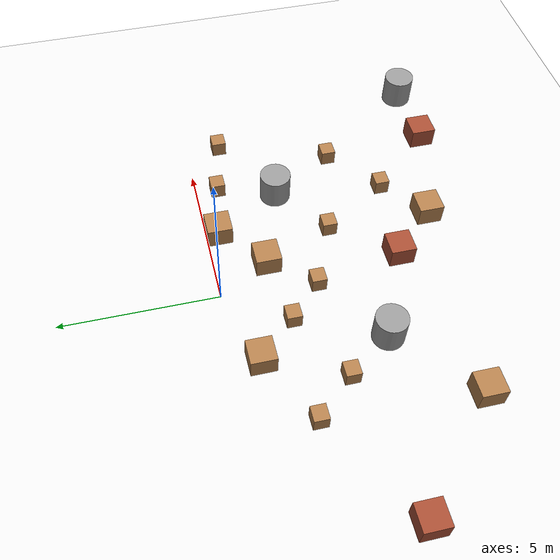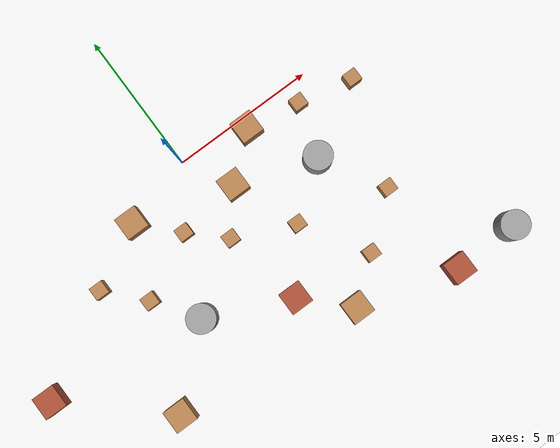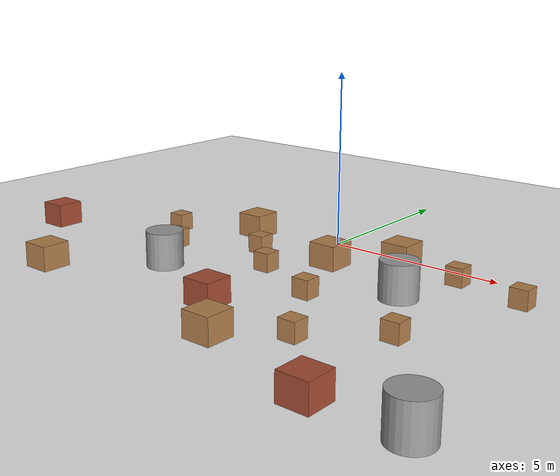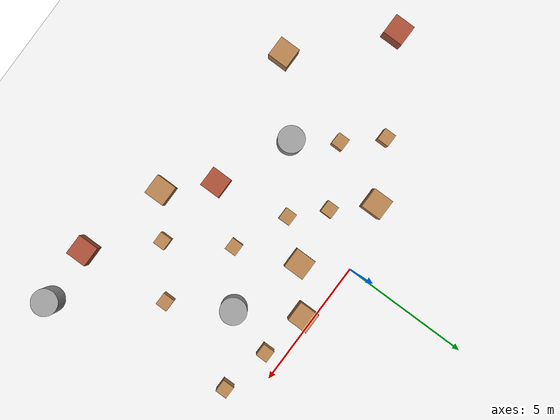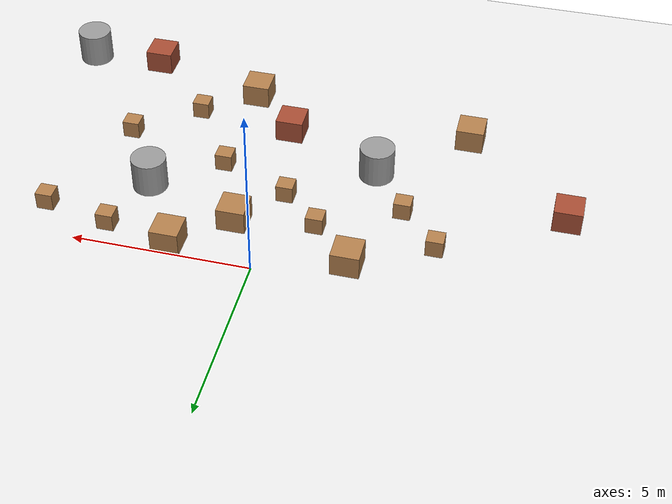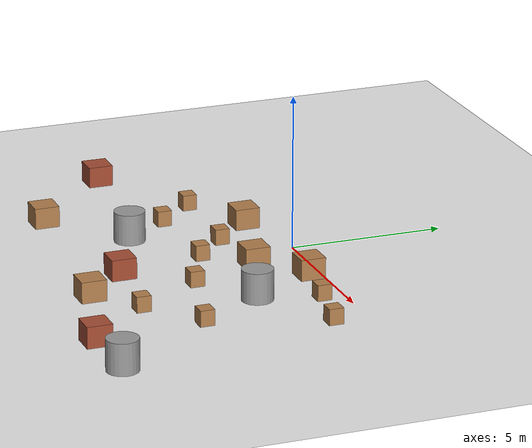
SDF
<sdf version="1.6">
 <world name="default">
  <model name="ground_plane">
   <static>1</static>
   <link name="link">
    <collision name="collision">
     <geometry><plane><normal>0 0 1</normal><size>100 100</size></plane></geometry>
     <surface><friction><ode><mu>100</mu><mu2>50</mu2></ode></friction></surface>
    </collision>
    <visual name="visual">
     <cast_shadows>0</cast_shadows>
     <geometry><plane><normal>0 0 1</normal><size>100 100</size></plane></geometry>
     <material>
      <script><uri>file://media/materials/scripts/gazebo.material</uri><name>Gazebo/White</name></script>
     </material>
    </visual>
   </link>
  </model>
  <model name="Box_0">
   <link name="link">
    <inertial>
     <mass>0.01</mass>
     <inertia>
      <ixx>0.00455697</ixx>
      <ixy>0</ixy>
      <ixz>0</ixz>
      <iyy>0.00475558</iyy>
      <iyz>0</iyz>
      <izz>0.00426137</izz>
     </inertia>
    </inertial>
    <visual name="visual">
     <geometry><box><size>0.483208 0.461193 0.514245</size></box></geometry>
     <material>
      <script><name>Gazebo/WoodFloor</name><uri>file://media/materials/scripts/gazebo.material</uri></script>
      <ambient>0.3 0.3 0.3 1</ambient>
      <diffuse>0.7 0.7 0.7 1</diffuse>
      <specular>0.01 0.01 0.01 1</specular>
      <emissive>0 0 0 1</emissive>
     </material>
    </visual>
    <collision name="collision">
     <geometry><box><size>0.483208 0.461193 0.514245</size></box></geometry>
     <surface>
      <friction>
       <ode><mu>1</mu><mu2>1</mu2><fdir1>0 0 0</fdir1><slip1>0</slip1><slip2>0</slip2></ode>
       <torsional>
        <coefficient>1</coefficient>
        <patch_radius>0</patch_radius>
        <surface_radius>0</surface_radius>
        <use_patch_radius>1</use_patch_radius>
        <ode><slip>0</slip></ode>
       </torsional>
      </friction>
      <bounce><restitution_coefficient>0</restitution_coefficient><threshold>1e+06</threshold></bounce>
      <contact>
       <collide_without_contact>0</collide_without_contact>
       <collide_without_contact_bitmask>1</collide_without_contact_bitmask>
       <collide_bitmask>1</collide_bitmask>
       <ode>
        <soft_cfm>0</soft_cfm>
        <soft_erp>0.2</soft_erp>
        <kp>1e+13</kp>
        <kd>1</kd>
        <max_vel>0.01</max_vel>
        <min_depth>0</min_depth>
       </ode>
       <bullet>
        <split_impulse>1</split_impulse>
        <split_impulse_penetration_threshold>-0.01</split_impulse_penetration_threshold>
        <soft_cfm>0</soft_cfm>
        <soft_erp>0.2</soft_erp>
        <kp>1e+13</kp>
        <kd>1</kd>
       </bullet>
      </contact>
     </surface>
    </collision>
   </link>
   <static>0</static>
   <pose>-1.29677 -1.94681 0.257122 0 -0 0</pose>
  </model>
  <model name="HeavyBox_0">
   <link name="link">
    <inertial>
     <mass>0.0579948</mass>
     <inertia>
      <ixx>0.0402452</ixx>
      <ixy>0</ixy>
      <ixz>0</ixz>
      <iyy>0.0399236</iyy>
      <iyz>0</iyz>
      <izz>0.0461707</izz>
     </inertia>
    </inertial>
    <visual name="visual">
     <geometry><box><size>0.79482 0.800386 0.684447</size></box></geometry>
     <material>
      <script><name>Gazebo/WoodFloor</name><uri>file://media/materials/scripts/gazebo.material</uri></script>
      <ambient>0.3 0.3 0.3 1</ambient>
      <diffuse>0.7 0.7 0.7 1</diffuse>
      <specular>0.01 0.01 0.01 1</specular>
      <emissive>0 0 0 1</emissive>
     </material>
    </visual>
    <collision name="collision">
     <geometry><box><size>0.79482 0.800386 0.684447</size></box></geometry>
     <surface>
      <friction>
       <ode><mu>1</mu><mu2>1</mu2><fdir1>0 0 0</fdir1><slip1>0</slip1><slip2>0</slip2></ode>
       <torsional>
        <coefficient>1</coefficient>
        <patch_radius>0</patch_radius>
        <surface_radius>0</surface_radius>
        <use_patch_radius>1</use_patch_radius>
        <ode><slip>0</slip></ode>
       </torsional>
      </friction>
      <bounce><restitution_coefficient>0</restitution_coefficient><threshold>1e+06</threshold></bounce>
      <contact>
       <collide_without_contact>0</collide_without_contact>
       <collide_without_contact_bitmask>1</collide_without_contact_bitmask>
       <collide_bitmask>1</collide_bitmask>
       <ode>
        <soft_cfm>0</soft_cfm>
        <soft_erp>0.2</soft_erp>
        <kp>1e+13</kp>
        <kd>1</kd>
        <max_vel>0.01</max_vel>
        <min_depth>0</min_depth>
       </ode>
       <bullet>
        <split_impulse>1</split_impulse>
        <split_impulse_penetration_threshold>-0.01</split_impulse_penetration_threshold>
        <soft_cfm>0</soft_cfm>
        <soft_erp>0.2</soft_erp>
        <kp>1e+13</kp>
        <kd>1</kd>
       </bullet>
      </contact>
     </surface>
    </collision>
   </link>
   <static>0</static>
   <pose>-2.46098 -0.708765 0.342223 0 -0 0</pose>
  </model>
  <model name="HeavyBox_1">
   <link name="link">
    <inertial>
     <mass>0.0579948</mass>
     <inertia>
      <ixx>0.0402452</ixx>
      <ixy>0</ixy>
      <ixz>0</ixz>
      <iyy>0.0399236</iyy>
      <iyz>0</iyz>
      <izz>0.0461707</izz>
     </inertia>
    </inertial>
    <visual name="visual">
     <geometry><box><size>0.79482 0.800386 0.684447</size></box></geometry>
     <material>
      <script><name>Gazebo/WoodFloor</name><uri>file://media/materials/scripts/gazebo.material</uri></script>
      <ambient>0.3 0.3 0.3 1</ambient>
      <diffuse>0.7 0.7 0.7 1</diffuse>
      <specular>0.01 0.01 0.01 1</specular>
      <emissive>0 0 0 1</emissive>
     </material>
    </visual>
    <collision name="collision">
     <geometry><box><size>0.79482 0.800386 0.684447</size></box></geometry>
     <surface>
      <friction>
       <ode><mu>1</mu><mu2>1</mu2><fdir1>0 0 0</fdir1><slip1>0</slip1><slip2>0</slip2></ode>
       <torsional>
        <coefficient>1</coefficient>
        <patch_radius>0</patch_radius>
        <surface_radius>0</surface_radius>
        <use_patch_radius>1</use_patch_radius>
        <ode><slip>0</slip></ode>
       </torsional>
      </friction>
      <bounce><restitution_coefficient>0</restitution_coefficient><threshold>1e+06</threshold></bounce>
      <contact>
       <collide_without_contact>0</collide_without_contact>
       <collide_without_contact_bitmask>1</collide_without_contact_bitmask>
       <collide_bitmask>1</collide_bitmask>
       <ode>
        <soft_cfm>0</soft_cfm>
        <soft_erp>0.2</soft_erp>
        <kp>1e+13</kp>
        <kd>1</kd>
        <max_vel>0.01</max_vel>
        <min_depth>0</min_depth>
       </ode>
       <bullet>
        <split_impulse>1</split_impulse>
        <split_impulse_penetration_threshold>-0.01</split_impulse_penetration_threshold>
        <soft_cfm>0</soft_cfm>
        <soft_erp>0.2</soft_erp>
        <kp>1e+13</kp>
        <kd>1</kd>
       </bullet>
      </contact>
     </surface>
    </collision>
   </link>
   <static>0</static>
   <pose>0.92371 -1.65495 0.342223 0 -0 0</pose>
  </model>
  <model name="HeavyBox_2">
   <link name="link">
    <inertial>
     <mass>0.0579948</mass>
     <inertia>
      <ixx>0.0402452</ixx>
      <ixy>0</ixy>
      <ixz>0</ixz>
      <iyy>0.0399236</iyy>
      <iyz>0</iyz>
      <izz>0.0461707</izz>
     </inertia>
    </inertial>
    <visual name="visual">
     <geometry><box><size>0.79482 0.800386 0.684447</size></box></geometry>
     <material>
      <script><name>Gazebo/WoodFloor</name><uri>file://media/materials/scripts/gazebo.material</uri></script>
      <ambient>0.3 0.3 0.3 1</ambient>
      <diffuse>0.7 0.7 0.7 1</diffuse>
      <specular>0.01 0.01 0.01 1</specular>
      <emissive>0 0 0 1</emissive>
     </material>
    </visual>
    <collision name="collision">
     <geometry><box><size>0.79482 0.800386 0.684447</size></box></geometry>
     <surface>
      <friction>
       <ode><mu>1</mu><mu2>1</mu2><fdir1>0 0 0</fdir1><slip1>0</slip1><slip2>0</slip2></ode>
       <torsional>
        <coefficient>1</coefficient>
        <patch_radius>0</patch_radius>
        <surface_radius>0</surface_radius>
        <use_patch_radius>1</use_patch_radius>
        <ode><slip>0</slip></ode>
       </torsional>
      </friction>
      <bounce><restitution_coefficient>0</restitution_coefficient><threshold>1e+06</threshold></bounce>
      <contact>
       <collide_without_contact>0</collide_without_contact>
       <collide_without_contact_bitmask>1</collide_without_contact_bitmask>
       <collide_bitmask>1</collide_bitmask>
       <ode>
        <soft_cfm>0</soft_cfm>
        <soft_erp>0.2</soft_erp>
        <kp>1e+13</kp>
        <kd>1</kd>
        <max_vel>0.01</max_vel>
        <min_depth>0</min_depth>
       </ode>
       <bullet>
        <split_impulse>1</split_impulse>
        <split_impulse_penetration_threshold>-0.01</split_impulse_penetration_threshold>
        <soft_cfm>0</soft_cfm>
        <soft_erp>0.2</soft_erp>
        <kp>1e+13</kp>
        <kd>1</kd>
       </bullet>
      </contact>
     </surface>
    </collision>
   </link>
   <static>0</static>
   <pose>2.39174 -0.406976 0.342223 0 -0 0</pose>
  </model>
  <model name="HighRock">
   <link name="link_0">
    <inertial>
     <mass>5</mass>
     <inertia><ixx>0.145833</ixx><ixy>0</ixy><ixz>0</ixz><iyy>0.145833</iyy><iyz>0</iyz><izz>0.125</izz></inertia>
    </inertial>
    <visual name="visual">
     <geometry><cylinder><radius>0.5</radius><length>1</length></cylinder></geometry>
     <material>
      <lighting>1</lighting>
      <script><uri>file://media/materials/scripts/gazebo.material</uri><name>Gazebo/Gray</name></script>
      <ambient>0.3 0.3 0.3 1</ambient>
      <diffuse>0.7 0.7 0.7 1</diffuse>
      <specular>0.01 0.01 0.01 1</specular>
      <emissive>0 0 0 1</emissive>
     </material>
    </visual>
    <collision name="collision">
     <geometry><cylinder><radius>0.5</radius><length>1</length></cylinder></geometry>
     <surface>
      <friction>
       <ode><mu>1</mu><mu2>1</mu2><fdir1>0 0 0</fdir1><slip1>0</slip1><slip2>0</slip2></ode>
       <torsional>
        <coefficient>1</coefficient>
        <patch_radius>0</patch_radius>
        <surface_radius>0</surface_radius>
        <use_patch_radius>1</use_patch_radius>
        <ode><slip>0</slip></ode>
       </torsional>
      </friction>
      <bounce><restitution_coefficient>0</restitution_coefficient><threshold>1e+06</threshold></bounce>
      <contact>
       <collide_without_contact>0</collide_without_contact>
       <collide_without_contact_bitmask>1</collide_without_contact_bitmask>
       <collide_bitmask>1</collide_bitmask>
       <ode>
        <soft_cfm>0</soft_cfm>
        <soft_erp>0.2</soft_erp>
        <kp>1e+13</kp>
        <kd>1</kd>
        <max_vel>0.01</max_vel>
        <min_depth>0</min_depth>
       </ode>
       <bullet>
        <split_impulse>1</split_impulse>
        <split_impulse_penetration_threshold>-0.01</split_impulse_penetration_threshold>
        <soft_cfm>0</soft_cfm>
        <soft_erp>0.2</soft_erp>
        <kp>1e+13</kp>
        <kd>1</kd>
       </bullet>
      </contact>
     </surface>
    </collision>
   </link>
   <static>0</static>
   <pose>-2.45158 -4.55607 0.499999 0 0 -1e-06</pose>
  </model>
  <model name="Box_4">
   <link name="link">
    <inertial>
     <mass>0.01</mass>
     <inertia>
      <ixx>0.00455697</ixx>
      <ixy>0</ixy>
      <ixz>0</ixz>
      <iyy>0.00475558</iyy>
      <iyz>0</iyz>
      <izz>0.00426137</izz>
     </inertia>
    </inertial>
    <visual name="visual">
     <geometry><box><size>0.483208 0.461193 0.514245</size></box></geometry>
     <material>
      <script><name>Gazebo/WoodFloor</name><uri>file://media/materials/scripts/gazebo.material</uri></script>
      <ambient>0.3 0.3 0.3 1</ambient>
      <diffuse>0.7 0.7 0.7 1</diffuse>
      <specular>0.01 0.01 0.01 1</specular>
      <emissive>0 0 0 1</emissive>
     </material>
    </visual>
    <collision name="collision">
     <geometry><box><size>0.483208 0.461193 0.514245</size></box></geometry>
     <surface>
      <friction>
       <ode><mu>1</mu><mu2>1</mu2><fdir1>0 0 0</fdir1><slip1>0</slip1><slip2>0</slip2></ode>
       <torsional>
        <coefficient>1</coefficient>
        <patch_radius>0</patch_radius>
        <surface_radius>0</surface_radius>
        <use_patch_radius>1</use_patch_radius>
        <ode><slip>0</slip></ode>
       </torsional>
      </friction>
      <bounce><restitution_coefficient>0</restitution_coefficient><threshold>1e+06</threshold></bounce>
      <contact>
       <collide_without_contact>0</collide_without_contact>
       <collide_without_contact_bitmask>1</collide_without_contact_bitmask>
       <collide_bitmask>1</collide_bitmask>
       <ode>
        <soft_cfm>0</soft_cfm>
        <soft_erp>0.2</soft_erp>
        <kp>1e+13</kp>
        <kd>1</kd>
        <max_vel>0.01</max_vel>
        <min_depth>0</min_depth>
       </ode>
       <bullet>
        <split_impulse>1</split_impulse>
        <split_impulse_penetration_threshold>-0.01</split_impulse_penetration_threshold>
        <soft_cfm>0</soft_cfm>
        <soft_erp>0.2</soft_erp>
        <kp>1e+13</kp>
        <kd>1</kd>
       </bullet>
      </contact>
     </surface>
    </collision>
   </link>
   <static>0</static>
   <pose>-0.187064 -3.01176 0.257122 0 -0 0</pose>
  </model>
  <model name="Box_5">
   <link name="link">
    <inertial>
     <mass>0.01</mass>
     <inertia>
      <ixx>0.00455697</ixx>
      <ixy>0</ixy>
      <ixz>0</ixz>
      <iyy>0.00475558</iyy>
      <iyz>0</iyz>
      <izz>0.00426137</izz>
     </inertia>
    </inertial>
    <visual name="visual">
     <geometry><box><size>0.483208 0.461193 0.514245</size></box></geometry>
     <material>
      <script><name>Gazebo/WoodFloor</name><uri>file://media/materials/scripts/gazebo.material</uri></script>
      <ambient>0.3 0.3 0.3 1</ambient>
      <diffuse>0.7 0.7 0.7 1</diffuse>
      <specular>0.01 0.01 0.01 1</specular>
      <emissive>0 0 0 1</emissive>
     </material>
    </visual>
    <collision name="collision">
     <geometry><box><size>0.483208 0.461193 0.514245</size></box></geometry>
     <surface>
      <friction>
       <ode><mu>1</mu><mu2>1</mu2><fdir1>0 0 0</fdir1><slip1>0</slip1><slip2>0</slip2></ode>
       <torsional>
        <coefficient>1</coefficient>
        <patch_radius>0</patch_radius>
        <surface_radius>0</surface_radius>
        <use_patch_radius>1</use_patch_radius>
        <ode><slip>0</slip></ode>
       </torsional>
      </friction>
      <bounce><restitution_coefficient>0</restitution_coefficient><threshold>1e+06</threshold></bounce>
      <contact>
       <collide_without_contact>0</collide_without_contact>
       <collide_without_contact_bitmask>1</collide_without_contact_bitmask>
       <collide_bitmask>1</collide_bitmask>
       <ode>
        <soft_cfm>0</soft_cfm>
        <soft_erp>0.2</soft_erp>
        <kp>1e+13</kp>
        <kd>1</kd>
        <max_vel>0.01</max_vel>
        <min_depth>0</min_depth>
       </ode>
       <bullet>
        <split_impulse>1</split_impulse>
        <split_impulse_penetration_threshold>-0.01</split_impulse_penetration_threshold>
        <soft_cfm>0</soft_cfm>
        <soft_erp>0.2</soft_erp>
        <kp>1e+13</kp>
        <kd>1</kd>
       </bullet>
      </contact>
     </surface>
    </collision>
   </link>
   <static>0</static>
   <pose>-3.49282 -3.09166 0.257122 0 -0 0</pose>
  </model>
  <model name="HighRock_1">
   <link name="link_0">
    <inertial>
     <mass>5</mass>
     <inertia><ixx>0.145833</ixx><ixy>0</ixy><ixz>0</ixz><iyy>0.145833</iyy><iyz>0</iyz><izz>0.125</izz></inertia>
    </inertial>
    <visual name="visual">
     <geometry><cylinder><radius>0.5</radius><length>1</length></cylinder></geometry>
     <material>
      <lighting>1</lighting>
      <script><uri>file://media/materials/scripts/gazebo.material</uri><name>Gazebo/Gray</name></script>
      <ambient>0.3 0.3 0.3 1</ambient>
      <diffuse>0.7 0.7 0.7 1</diffuse>
      <specular>0.01 0.01 0.01 1</specular>
      <emissive>0 0 0 1</emissive>
     </material>
    </visual>
    <collision name="collision">
     <geometry><cylinder><radius>0.5</radius><length>1</length></cylinder></geometry>
     <surface>
      <friction>
       <ode><mu>1</mu><mu2>1</mu2><fdir1>0 0 0</fdir1><slip1>0</slip1><slip2>0</slip2></ode>
       <torsional>
        <coefficient>1</coefficient>
        <patch_radius>0</patch_radius>
        <surface_radius>0</surface_radius>
        <use_patch_radius>1</use_patch_radius>
        <ode><slip>0</slip></ode>
       </torsional>
      </friction>
      <bounce><restitution_coefficient>0</restitution_coefficient><threshold>1e+06</threshold></bounce>
      <contact>
       <collide_without_contact>0</collide_without_contact>
       <collide_without_contact_bitmask>1</collide_without_contact_bitmask>
       <collide_bitmask>1</collide_bitmask>
       <ode>
        <soft_cfm>0</soft_cfm>
        <soft_erp>0.2</soft_erp>
        <kp>1e+13</kp>
        <kd>1</kd>
        <max_vel>0.01</max_vel>
        <min_depth>0</min_depth>
       </ode>
       <bullet>
        <split_impulse>1</split_impulse>
        <split_impulse_penetration_threshold>-0.01</split_impulse_penetration_threshold>
        <soft_cfm>0</soft_cfm>
        <soft_erp>0.2</soft_erp>
        <kp>1e+13</kp>
        <kd>1</kd>
       </bullet>
      </contact>
     </surface>
    </collision>
   </link>
   <static>0</static>
   <pose>3.66593 -2.58503 0.499999 1e-06 -0 -1e-06</pose>
  </model>
  <model name="HeavyBox_6">
   <link name="link">
    <inertial>
     <mass>2</mass>
     <inertia>
      <ixx>0.0402452</ixx>
      <ixy>0</ixy>
      <ixz>0</ixz>
      <iyy>0.0399236</iyy>
      <iyz>0</iyz>
      <izz>0.0461707</izz>
     </inertia>
    </inertial>
    <visual name="visual">
     <geometry><box><size>0.79482 0.800386 0.684447</size></box></geometry>
     <material>
      <script><name>Gazebo/Bricks</name><uri>file://media/materials/scripts/gazebo.material</uri></script>
      <ambient>0.3 0.3 0.3 1</ambient>
      <diffuse>0.7 0.7 0.7 1</diffuse>
      <specular>0.01 0.01 0.01 1</specular>
      <emissive>0 0 0 1</emissive>
     </material>
    </visual>
    <collision name="collision">
     <geometry><box><size>0.79482 0.800386 0.684447</size></box></geometry>
     <surface>
      <friction>
       <ode><mu>1</mu><mu2>1</mu2><fdir1>0 0 0</fdir1><slip1>0</slip1><slip2>0</slip2></ode>
       <torsional>
        <coefficient>1</coefficient>
        <patch_radius>0</patch_radius>
        <surface_radius>0</surface_radius>
        <use_patch_radius>1</use_patch_radius>
        <ode><slip>0</slip></ode>
       </torsional>
      </friction>
      <bounce><restitution_coefficient>0</restitution_coefficient><threshold>1e+06</threshold></bounce>
      <contact>
       <collide_without_contact>0</collide_without_contact>
       <collide_without_contact_bitmask>1</collide_without_contact_bitmask>
       <collide_bitmask>1</collide_bitmask>
       <ode>
        <soft_cfm>0</soft_cfm>
        <soft_erp>0.2</soft_erp>
        <kp>1e+13</kp>
        <kd>1</kd>
        <max_vel>0.01</max_vel>
        <min_depth>0</min_depth>
       </ode>
       <bullet>
        <split_impulse>1</split_impulse>
        <split_impulse_penetration_threshold>-0.01</split_impulse_penetration_threshold>
        <soft_cfm>0</soft_cfm>
        <soft_erp>0.2</soft_erp>
        <kp>1e+13</kp>
        <kd>1</kd>
       </bullet>
      </contact>
     </surface>
    </collision>
   </link>
   <static>0</static>
   <pose>0.361489 -5.82049 0.342219 0 1.1e-05 6.8e-05</pose>
  </model>
  <model name="Box_11">
   <link name="link">
    <inertial>
     <mass>0.01</mass>
     <inertia>
      <ixx>0.00455697</ixx>
      <ixy>0</ixy>
      <ixz>0</ixz>
      <iyy>0.00475558</iyy>
      <iyz>0</iyz>
      <izz>0.00426137</izz>
     </inertia>
    </inertial>
    <visual name="visual">
     <geometry><box><size>0.483208 0.461193 0.514245</size></box></geometry>
     <material>
      <script><name>Gazebo/WoodFloor</name><uri>file://media/materials/scripts/gazebo.material</uri></script>
      <ambient>0.3 0.3 0.3 1</ambient>
      <diffuse>0.7 0.7 0.7 1</diffuse>
      <specular>0.01 0.01 0.01 1</specular>
      <emissive>0 0 0 1</emissive>
     </material>
    </visual>
    <collision name="collision">
     <geometry><box><size>0.483208 0.461193 0.514245</size></box></geometry>
     <surface>
      <friction>
       <ode><mu>1</mu><mu2>1</mu2><fdir1>0 0 0</fdir1><slip1>0</slip1><slip2>0</slip2></ode>
       <torsional>
        <coefficient>1</coefficient>
        <patch_radius>0</patch_radius>
        <surface_radius>0</surface_radius>
        <use_patch_radius>1</use_patch_radius>
        <ode><slip>0</slip></ode>
       </torsional>
      </friction>
      <bounce><restitution_coefficient>0</restitution_coefficient><threshold>1e+06</threshold></bounce>
      <contact>
       <collide_without_contact>0</collide_without_contact>
       <collide_without_contact_bitmask>1</collide_without_contact_bitmask>
       <collide_bitmask>1</collide_bitmask>
       <ode>
        <soft_cfm>0</soft_cfm>
        <soft_erp>0.2</soft_erp>
        <kp>1e+13</kp>
        <kd>1</kd>
        <max_vel>0.01</max_vel>
        <min_depth>0</min_depth>
       </ode>
       <bullet>
        <split_impulse>1</split_impulse>
        <split_impulse_penetration_threshold>-0.01</split_impulse_penetration_threshold>
        <soft_cfm>0</soft_cfm>
        <soft_erp>0.2</soft_erp>
        <kp>1e+13</kp>
        <kd>1</kd>
       </bullet>
      </contact>
     </surface>
    </collision>
   </link>
   <static>0</static>
   <pose>-4.60902 -1.84133 0.257122 0 -0 0</pose>
  </model>
  <model name="Box_12">
   <link name="link">
    <inertial>
     <mass>0.01</mass>
     <inertia>
      <ixx>0.00455697</ixx>
      <ixy>0</ixy>
      <ixz>0</ixz>
      <iyy>0.00475558</iyy>
      <iyz>0</iyz>
      <izz>0.00426137</izz>
     </inertia>
    </inertial>
    <visual name="visual">
     <geometry><box><size>0.483208 0.461193 0.514245</size></box></geometry>
     <material>
      <script><name>Gazebo/WoodFloor</name><uri>file://media/materials/scripts/gazebo.material</uri></script>
      <ambient>0.3 0.3 0.3 1</ambient>
      <diffuse>0.7 0.7 0.7 1</diffuse>
      <specular>0.01 0.01 0.01 1</specular>
      <emissive>0 0 0 1</emissive>
     </material>
    </visual>
    <collision name="collision">
     <geometry><box><size>0.483208 0.461193 0.514245</size></box></geometry>
     <surface>
      <friction>
       <ode><mu>1</mu><mu2>1</mu2><fdir1>0 0 0</fdir1><slip1>0</slip1><slip2>0</slip2></ode>
       <torsional>
        <coefficient>1</coefficient>
        <patch_radius>0</patch_radius>
        <surface_radius>0</surface_radius>
        <use_patch_radius>1</use_patch_radius>
        <ode><slip>0</slip></ode>
       </torsional>
      </friction>
      <bounce><restitution_coefficient>0</restitution_coefficient><threshold>1e+06</threshold></bounce>
      <contact>
       <collide_without_contact>0</collide_without_contact>
       <collide_without_contact_bitmask>1</collide_without_contact_bitmask>
       <collide_bitmask>1</collide_bitmask>
       <ode>
        <soft_cfm>0</soft_cfm>
        <soft_erp>0.2</soft_erp>
        <kp>1e+13</kp>
        <kd>1</kd>
        <max_vel>0.01</max_vel>
        <min_depth>0</min_depth>
       </ode>
       <bullet>
        <split_impulse>1</split_impulse>
        <split_impulse_penetration_threshold>-0.01</split_impulse_penetration_threshold>
        <soft_cfm>0</soft_cfm>
        <soft_erp>0.2</soft_erp>
        <kp>1e+13</kp>
        <kd>1</kd>
       </bullet>
      </contact>
     </surface>
    </collision>
   </link>
   <static>0</static>
   <pose>1.8479 -3.9229 0.257122 0 -0 0</pose>
  </model>
  <model name="Box_13">
   <link name="link">
    <inertial>
     <mass>0.01</mass>
     <inertia>
      <ixx>0.00455697</ixx>
      <ixy>0</ixy>
      <ixz>0</ixz>
      <iyy>0.00475558</iyy>
      <iyz>0</iyz>
      <izz>0.00426137</izz>
     </inertia>
    </inertial>
    <visual name="visual">
     <geometry><box><size>0.483208 0.461193 0.514245</size></box></geometry>
     <material>
      <script><name>Gazebo/WoodFloor</name><uri>file://media/materials/scripts/gazebo.material</uri></script>
      <ambient>0.3 0.3 0.3 1</ambient>
      <diffuse>0.7 0.7 0.7 1</diffuse>
      <specular>0.01 0.01 0.01 1</specular>
      <emissive>0 0 0 1</emissive>
     </material>
    </visual>
    <collision name="collision">
     <geometry><box><size>0.483208 0.461193 0.514245</size></box></geometry>
     <surface>
      <friction>
       <ode><mu>1</mu><mu2>1</mu2><fdir1>0 0 0</fdir1><slip1>0</slip1><slip2>0</slip2></ode>
       <torsional>
        <coefficient>1</coefficient>
        <patch_radius>0</patch_radius>
        <surface_radius>0</surface_radius>
        <use_patch_radius>1</use_patch_radius>
        <ode><slip>0</slip></ode>
       </torsional>
      </friction>
      <bounce><restitution_coefficient>0</restitution_coefficient><threshold>1e+06</threshold></bounce>
      <contact>
       <collide_without_contact>0</collide_without_contact>
       <collide_without_contact_bitmask>1</collide_without_contact_bitmask>
       <collide_bitmask>1</collide_bitmask>
       <ode>
        <soft_cfm>0</soft_cfm>
        <soft_erp>0.2</soft_erp>
        <kp>1e+13</kp>
        <kd>1</kd>
        <max_vel>0.01</max_vel>
        <min_depth>0</min_depth>
       </ode>
       <bullet>
        <split_impulse>1</split_impulse>
        <split_impulse_penetration_threshold>-0.01</split_impulse_penetration_threshold>
        <soft_cfm>0</soft_cfm>
        <soft_erp>0.2</soft_erp>
        <kp>1e+13</kp>
        <kd>1</kd>
       </bullet>
      </contact>
     </surface>
    </collision>
   </link>
   <static>0</static>
   <pose>4.25892 -0.726953 0.257122 0 -0 0</pose>
  </model>
  <model name="HeavyBox_8">
   <link name="link">
    <inertial>
     <mass>2</mass>
     <inertia>
      <ixx>0.0402452</ixx>
      <ixy>0</ixy>
      <ixz>0</ixz>
      <iyy>0.0399236</iyy>
      <iyz>0</iyz>
      <izz>0.0461707</izz>
     </inertia>
    </inertial>
    <visual name="visual">
     <geometry><box><size>0.79482 0.800386 0.684447</size></box></geometry>
     <material>
      <script><name>Gazebo/Bricks</name><uri>file://media/materials/scripts/gazebo.material</uri></script>
      <ambient>0.3 0.3 0.3 1</ambient>
      <diffuse>0.7 0.7 0.7 1</diffuse>
      <specular>0.01 0.01 0.01 1</specular>
      <emissive>0 0 0 1</emissive>
     </material>
    </visual>
    <collision name="collision">
     <geometry><box><size>0.79482 0.800386 0.684447</size></box></geometry>
     <surface>
      <friction>
       <ode><mu>1</mu><mu2>1</mu2><fdir1>0 0 0</fdir1><slip1>0</slip1><slip2>0</slip2></ode>
       <torsional>
        <coefficient>1</coefficient>
        <patch_radius>0</patch_radius>
        <surface_radius>0</surface_radius>
        <use_patch_radius>1</use_patch_radius>
        <ode><slip>0</slip></ode>
       </torsional>
      </friction>
      <bounce><restitution_coefficient>0</restitution_coefficient><threshold>1e+06</threshold></bounce>
      <contact>
       <collide_without_contact>0</collide_without_contact>
       <collide_without_contact_bitmask>1</collide_without_contact_bitmask>
       <collide_bitmask>1</collide_bitmask>
       <ode>
        <soft_cfm>0</soft_cfm>
        <soft_erp>0.2</soft_erp>
        <kp>1e+13</kp>
        <kd>1</kd>
        <max_vel>0.01</max_vel>
        <min_depth>0</min_depth>
       </ode>
       <bullet>
        <split_impulse>1</split_impulse>
        <split_impulse_penetration_threshold>-0.01</split_impulse_penetration_threshold>
        <soft_cfm>0</soft_cfm>
        <soft_erp>0.2</soft_erp>
        <kp>1e+13</kp>
        <kd>1</kd>
       </bullet>
      </contact>
     </surface>
    </collision>
   </link>
   <static>0</static>
   <pose>5.1881 -8.21842 0.342224 0 1e-06 3.8e-05</pose>
  </model>
  <model name="Box_14">
   <link name="link">
    <inertial>
     <mass>0.01</mass>
     <inertia>
      <ixx>0.00455697</ixx>
      <ixy>0</ixy>
      <ixz>0</ixz>
      <iyy>0.00475558</iyy>
      <iyz>0</iyz>
      <izz>0.00426137</izz>
     </inertia>
    </inertial>
    <visual name="visual">
     <geometry><box><size>0.483208 0.461193 0.514245</size></box></geometry>
     <material>
      <script><name>Gazebo/WoodFloor</name><uri>file://media/materials/scripts/gazebo.material</uri></script>
      <ambient>0.3 0.3 0.3 1</ambient>
      <diffuse>0.7 0.7 0.7 1</diffuse>
      <specular>0.01 0.01 0.01 1</specular>
      <emissive>0 0 0 1</emissive>
     </material>
    </visual>
    <collision name="collision">
     <geometry><box><size>0.483208 0.461193 0.514245</size></box></geometry>
     <surface>
      <friction>
       <ode><mu>1</mu><mu2>1</mu2><fdir1>0 0 0</fdir1><slip1>0</slip1><slip2>0</slip2></ode>
       <torsional>
        <coefficient>1</coefficient>
        <patch_radius>0</patch_radius>
        <surface_radius>0</surface_radius>
        <use_patch_radius>1</use_patch_radius>
        <ode><slip>0</slip></ode>
       </torsional>
      </friction>
      <bounce><restitution_coefficient>0</restitution_coefficient><threshold>1e+06</threshold></bounce>
      <contact>
       <collide_without_contact>0</collide_without_contact>
       <collide_without_contact_bitmask>1</collide_without_contact_bitmask>
       <collide_bitmask>1</collide_bitmask>
       <ode>
        <soft_cfm>0</soft_cfm>
        <soft_erp>0.2</soft_erp>
        <kp>1e+13</kp>
        <kd>1</kd>
        <max_vel>0.01</max_vel>
        <min_depth>0</min_depth>
       </ode>
       <bullet>
        <split_impulse>1</split_impulse>
        <split_impulse_penetration_threshold>-0.01</split_impulse_penetration_threshold>
        <soft_cfm>0</soft_cfm>
        <soft_erp>0.2</soft_erp>
        <kp>1e+13</kp>
        <kd>1</kd>
       </bullet>
      </contact>
     </surface>
    </collision>
   </link>
   <static>0</static>
   <pose>3.21323 -6.12423 0.257122 0 -0 0</pose>
  </model>
  <model name="HeavyBox_0_clone">
   <link name="link">
    <inertial>
     <mass>0.0579948</mass>
     <inertia>
      <ixx>0.0402452</ixx>
      <ixy>0</ixy>
      <ixz>0</ixz>
      <iyy>0.0399236</iyy>
      <iyz>0</iyz>
      <izz>0.0461707</izz>
     </inertia>
    </inertial>
    <visual name="visual">
     <geometry><box><size>0.79482 0.800386 0.684447</size></box></geometry>
     <material>
      <script><name>Gazebo/WoodFloor</name><uri>file://media/materials/scripts/gazebo.material</uri></script>
      <ambient>0.3 0.3 0.3 1</ambient>
      <diffuse>0.7 0.7 0.7 1</diffuse>
      <specular>0.01 0.01 0.01 1</specular>
      <emissive>0 0 0 1</emissive>
     </material>
    </visual>
    <collision name="collision">
     <geometry><box><size>0.79482 0.800386 0.684447</size></box></geometry>
     <surface>
      <friction>
       <ode><mu>1</mu><mu2>1</mu2><fdir1>0 0 0</fdir1><slip1>0</slip1><slip2>0</slip2></ode>
       <torsional>
        <coefficient>1</coefficient>
        <patch_radius>0</patch_radius>
        <surface_radius>0</surface_radius>
        <use_patch_radius>1</use_patch_radius>
        <ode><slip>0</slip></ode>
       </torsional>
      </friction>
      <bounce><restitution_coefficient>0</restitution_coefficient><threshold>1e+06</threshold></bounce>
      <contact>
       <collide_without_contact>0</collide_without_contact>
       <collide_without_contact_bitmask>1</collide_without_contact_bitmask>
       <collide_bitmask>1</collide_bitmask>
       <ode>
        <soft_cfm>0</soft_cfm>
        <soft_erp>0.2</soft_erp>
        <kp>1e+13</kp>
        <kd>1</kd>
        <max_vel>0.01</max_vel>
        <min_depth>0</min_depth>
       </ode>
       <bullet>
        <split_impulse>1</split_impulse>
        <split_impulse_penetration_threshold>-0.01</split_impulse_penetration_threshold>
        <soft_cfm>0</soft_cfm>
        <soft_erp>0.2</soft_erp>
        <kp>1e+13</kp>
        <kd>1</kd>
       </bullet>
      </contact>
     </surface>
    </collision>
   </link>
   <static>0</static>
   <pose>1.77258 -7.25931 0.342223 0 -0 0</pose>
  </model>
  <model name="HeavyBox_0_clone_0">
   <link name="link">
    <inertial>
     <mass>0.0579948</mass>
     <inertia>
      <ixx>0.0402452</ixx>
      <ixy>0</ixy>
      <ixz>0</ixz>
      <iyy>0.0399236</iyy>
      <iyz>0</iyz>
      <izz>0.0461707</izz>
     </inertia>
    </inertial>
    <visual name="visual">
     <geometry><box><size>0.79482 0.800386 0.684447</size></box></geometry>
     <material>
      <script><name>Gazebo/WoodFloor</name><uri>file://media/materials/scripts/gazebo.material</uri></script>
      <ambient>0.3 0.3 0.3 1</ambient>
      <diffuse>0.7 0.7 0.7 1</diffuse>
      <specular>0.01 0.01 0.01 1</specular>
      <emissive>0 0 0 1</emissive>
     </material>
    </visual>
    <collision name="collision">
     <geometry><box><size>0.79482 0.800386 0.684447</size></box></geometry>
     <surface>
      <friction>
       <ode><mu>1</mu><mu2>1</mu2><fdir1>0 0 0</fdir1><slip1>0</slip1><slip2>0</slip2></ode>
       <torsional>
        <coefficient>1</coefficient>
        <patch_radius>0</patch_radius>
        <surface_radius>0</surface_radius>
        <use_patch_radius>1</use_patch_radius>
        <ode><slip>0</slip></ode>
       </torsional>
      </friction>
      <bounce><restitution_coefficient>0</restitution_coefficient><threshold>1e+06</threshold></bounce>
      <contact>
       <collide_without_contact>0</collide_without_contact>
       <collide_without_contact_bitmask>1</collide_without_contact_bitmask>
       <collide_bitmask>1</collide_bitmask>
       <ode>
        <soft_cfm>0</soft_cfm>
        <soft_erp>0.2</soft_erp>
        <kp>1e+13</kp>
        <kd>1</kd>
        <max_vel>0.01</max_vel>
        <min_depth>0</min_depth>
       </ode>
       <bullet>
        <split_impulse>1</split_impulse>
        <split_impulse_penetration_threshold>-0.01</split_impulse_penetration_threshold>
        <soft_cfm>0</soft_cfm>
        <soft_erp>0.2</soft_erp>
        <kp>1e+13</kp>
        <kd>1</kd>
       </bullet>
      </contact>
     </surface>
    </collision>
   </link>
   <static>0</static>
   <pose>-4.83564 -6.63583 0.342223 0 -0 0</pose>
  </model>
  <model name="Box_15">
   <link name="link">
    <inertial>
     <mass>0.01</mass>
     <inertia>
      <ixx>0.00455697</ixx>
      <ixy>0</ixy>
      <ixz>0</ixz>
      <iyy>0.00475558</iyy>
      <iyz>0</iyz>
      <izz>0.00426137</izz>
     </inertia>
    </inertial>
    <visual name="visual">
     <geometry><box><size>0.483208 0.461193 0.514245</size></box></geometry>
     <material>
      <script><name>Gazebo/WoodFloor</name><uri>file://media/materials/scripts/gazebo.material</uri></script>
      <ambient>0.3 0.3 0.3 1</ambient>
      <diffuse>0.7 0.7 0.7 1</diffuse>
      <specular>0.01 0.01 0.01 1</specular>
      <emissive>0 0 0 1</emissive>
     </material>
    </visual>
    <collision name="collision">
     <geometry><box><size>0.483208 0.461193 0.514245</size></box></geometry>
     <surface>
      <friction>
       <ode><mu>1</mu><mu2>1</mu2><fdir1>0 0 0</fdir1><slip1>0</slip1><slip2>0</slip2></ode>
       <torsional>
        <coefficient>1</coefficient>
        <patch_radius>0</patch_radius>
        <surface_radius>0</surface_radius>
        <use_patch_radius>1</use_patch_radius>
        <ode><slip>0</slip></ode>
       </torsional>
      </friction>
      <bounce><restitution_coefficient>0</restitution_coefficient><threshold>1e+06</threshold></bounce>
      <contact>
       <collide_without_contact>0</collide_without_contact>
       <collide_without_contact_bitmask>1</collide_without_contact_bitmask>
       <collide_bitmask>1</collide_bitmask>
       <ode>
        <soft_cfm>0</soft_cfm>
        <soft_erp>0.2</soft_erp>
        <kp>1e+13</kp>
        <kd>1</kd>
        <max_vel>0.01</max_vel>
        <min_depth>0</min_depth>
       </ode>
       <bullet>
        <split_impulse>1</split_impulse>
        <split_impulse_penetration_threshold>-0.01</split_impulse_penetration_threshold>
        <soft_cfm>0</soft_cfm>
        <soft_erp>0.2</soft_erp>
        <kp>1e+13</kp>
        <kd>1</kd>
       </bullet>
      </contact>
     </surface>
    </collision>
   </link>
   <static>0</static>
   <pose>4.92848 -4.73413 0.257122 0 -0 0</pose>
  </model>
  <model name="HighRock_4">
   <link name="link_0">
    <inertial>
     <mass>5</mass>
     <inertia><ixx>0.145833</ixx><ixy>0</ixy><ixz>0</ixz><iyy>0.145833</iyy><iyz>0</iyz><izz>0.125</izz></inertia>
    </inertial>
    <visual name="visual">
     <geometry><cylinder><radius>0.5</radius><length>1</length></cylinder></geometry>
     <material>
      <lighting>1</lighting>
      <script><uri>file://media/materials/scripts/gazebo.material</uri><name>Gazebo/Gray</name></script>
      <ambient>0.3 0.3 0.3 1</ambient>
      <diffuse>0.7 0.7 0.7 1</diffuse>
      <specular>0.01 0.01 0.01 1</specular>
      <emissive>0 0 0 1</emissive>
     </material>
    </visual>
    <collision name="collision">
     <geometry><cylinder><radius>0.5</radius><length>1</length></cylinder></geometry>
     <surface>
      <friction>
       <ode><mu>1</mu><mu2>1</mu2><fdir1>0 0 0</fdir1><slip1>0</slip1><slip2>0</slip2></ode>
       <torsional>
        <coefficient>1</coefficient>
        <patch_radius>0</patch_radius>
        <surface_radius>0</surface_radius>
        <use_patch_radius>1</use_patch_radius>
        <ode><slip>0</slip></ode>
       </torsional>
      </friction>
      <bounce><restitution_coefficient>0</restitution_coefficient><threshold>1e+06</threshold></bounce>
      <contact>
       <collide_without_contact>0</collide_without_contact>
       <collide_without_contact_bitmask>1</collide_without_contact_bitmask>
       <collide_bitmask>1</collide_bitmask>
       <ode>
        <soft_cfm>0</soft_cfm>
        <soft_erp>0.2</soft_erp>
        <kp>1e+13</kp>
        <kd>1</kd>
        <max_vel>0.01</max_vel>
        <min_depth>0</min_depth>
       </ode>
       <bullet>
        <split_impulse>1</split_impulse>
        <split_impulse_penetration_threshold>-0.01</split_impulse_penetration_threshold>
        <soft_cfm>0</soft_cfm>
        <soft_erp>0.2</soft_erp>
        <kp>1e+13</kp>
        <kd>1</kd>
       </bullet>
      </contact>
     </surface>
    </collision>
   </link>
   <static>0</static>
   <pose>7.3961 -8.14465 0.499991 -1e-06 0 0</pose>
  </model>
  <model name="Box_16">
   <link name="link">
    <inertial>
     <mass>0.01</mass>
     <inertia>
      <ixx>0.00455697</ixx>
      <ixy>0</ixy>
      <ixz>0</ixz>
      <iyy>0.00475558</iyy>
      <iyz>0</iyz>
      <izz>0.00426137</izz>
     </inertia>
    </inertial>
    <visual name="visual">
     <geometry><box><size>0.483208 0.461193 0.514245</size></box></geometry>
     <material>
      <script><name>Gazebo/WoodFloor</name><uri>file://media/materials/scripts/gazebo.material</uri></script>
      <ambient>0.3 0.3 0.3 1</ambient>
      <diffuse>0.7 0.7 0.7 1</diffuse>
      <specular>0.01 0.01 0.01 1</specular>
      <emissive>0 0 0 1</emissive>
     </material>
    </visual>
    <collision name="collision">
     <geometry><box><size>0.483208 0.461193 0.514245</size></box></geometry>
     <surface>
      <friction>
       <ode><mu>1</mu><mu2>1</mu2><fdir1>0 0 0</fdir1><slip1>0</slip1><slip2>0</slip2></ode>
       <torsional>
        <coefficient>1</coefficient>
        <patch_radius>0</patch_radius>
        <surface_radius>0</surface_radius>
        <use_patch_radius>1</use_patch_radius>
        <ode><slip>0</slip></ode>
       </torsional>
      </friction>
      <bounce><restitution_coefficient>0</restitution_coefficient><threshold>1e+06</threshold></bounce>
      <contact>
       <collide_without_contact>0</collide_without_contact>
       <collide_without_contact_bitmask>1</collide_without_contact_bitmask>
       <collide_bitmask>1</collide_bitmask>
       <ode>
        <soft_cfm>0</soft_cfm>
        <soft_erp>0.2</soft_erp>
        <kp>1e+13</kp>
        <kd>1</kd>
        <max_vel>0.01</max_vel>
        <min_depth>0</min_depth>
       </ode>
       <bullet>
        <split_impulse>1</split_impulse>
        <split_impulse_penetration_threshold>-0.01</split_impulse_penetration_threshold>
        <soft_cfm>0</soft_cfm>
        <soft_erp>0.2</soft_erp>
        <kp>1e+13</kp>
        <kd>1</kd>
       </bullet>
      </contact>
     </surface>
    </collision>
   </link>
   <static>0</static>
   <pose>6.16903 -1.12752 0.257122 0 -0 0</pose>
  </model>
  <model name="HeavyBox_9">
   <link name="link">
    <inertial>
     <mass>2</mass>
     <inertia>
      <ixx>0.0402452</ixx>
      <ixy>0</ixy>
      <ixz>0</ixz>
      <iyy>0.0399236</iyy>
      <iyz>0</iyz>
      <izz>0.0461707</izz>
     </inertia>
    </inertial>
    <visual name="visual">
     <geometry><box><size>0.79482 0.800386 0.684447</size></box></geometry>
     <material>
      <script><name>Gazebo/Bricks</name><uri>file://media/materials/scripts/gazebo.material</uri></script>
      <ambient>0.3 0.3 0.3 1</ambient>
      <diffuse>0.7 0.7 0.7 1</diffuse>
      <specular>0.01 0.01 0.01 1</specular>
      <emissive>0 0 0 1</emissive>
     </material>
    </visual>
    <collision name="collision">
     <geometry><box><size>0.79482 0.800386 0.684447</size></box></geometry>
     <surface>
      <friction>
       <ode><mu>1</mu><mu2>1</mu2><fdir1>0 0 0</fdir1><slip1>0</slip1><slip2>0</slip2></ode>
       <torsional>
        <coefficient>1</coefficient>
        <patch_radius>0</patch_radius>
        <surface_radius>0</surface_radius>
        <use_patch_radius>1</use_patch_radius>
        <ode><slip>0</slip></ode>
       </torsional>
      </friction>
      <bounce><restitution_coefficient>0</restitution_coefficient><threshold>1e+06</threshold></bounce>
      <contact>
       <collide_without_contact>0</collide_without_contact>
       <collide_without_contact_bitmask>1</collide_without_contact_bitmask>
       <collide_bitmask>1</collide_bitmask>
       <ode>
        <soft_cfm>0</soft_cfm>
        <soft_erp>0.2</soft_erp>
        <kp>1e+13</kp>
        <kd>1</kd>
        <max_vel>0.01</max_vel>
        <min_depth>0</min_depth>
       </ode>
       <bullet>
        <split_impulse>1</split_impulse>
        <split_impulse_penetration_threshold>-0.01</split_impulse_penetration_threshold>
        <soft_cfm>0</soft_cfm>
        <soft_erp>0.2</soft_erp>
        <kp>1e+13</kp>
        <kd>1</kd>
       </bullet>
      </contact>
     </surface>
    </collision>
   </link>
   <static>0</static>
   <pose>-7.93536 -3.80086 0.342219 0 1.1e-05 8e-06</pose>
  </model>
 </world>
</sdf>
